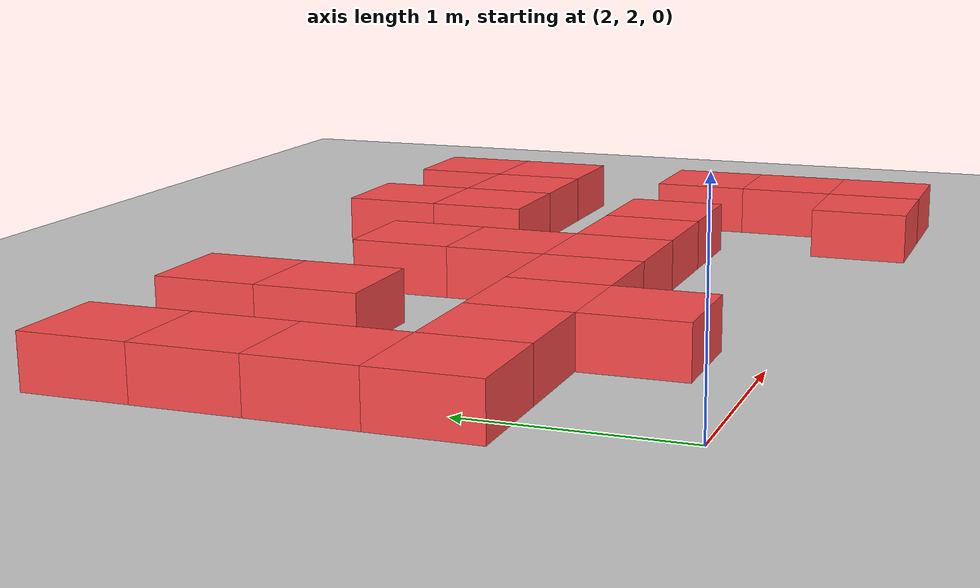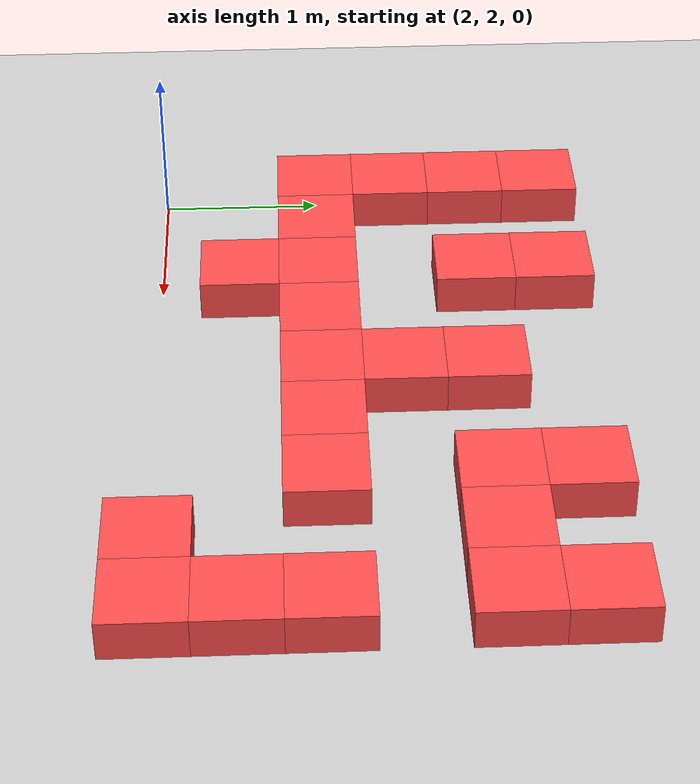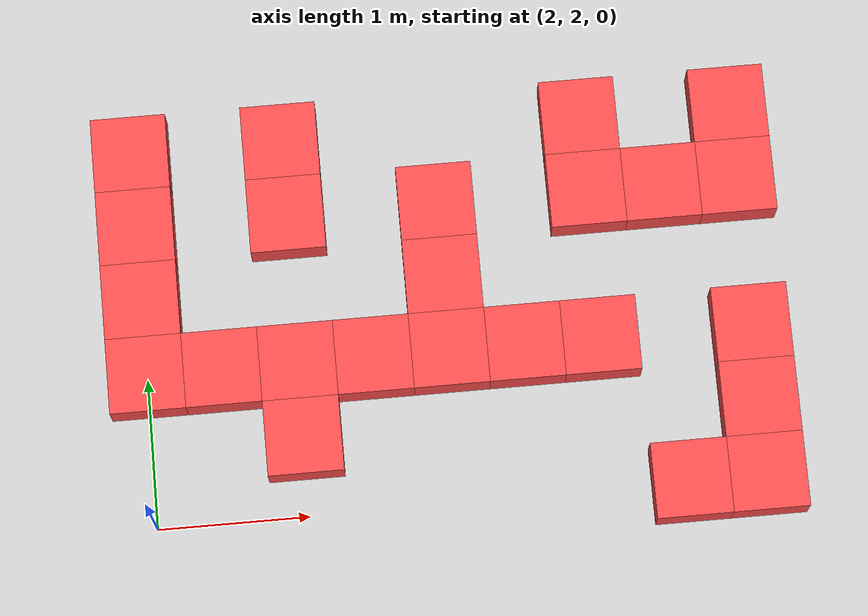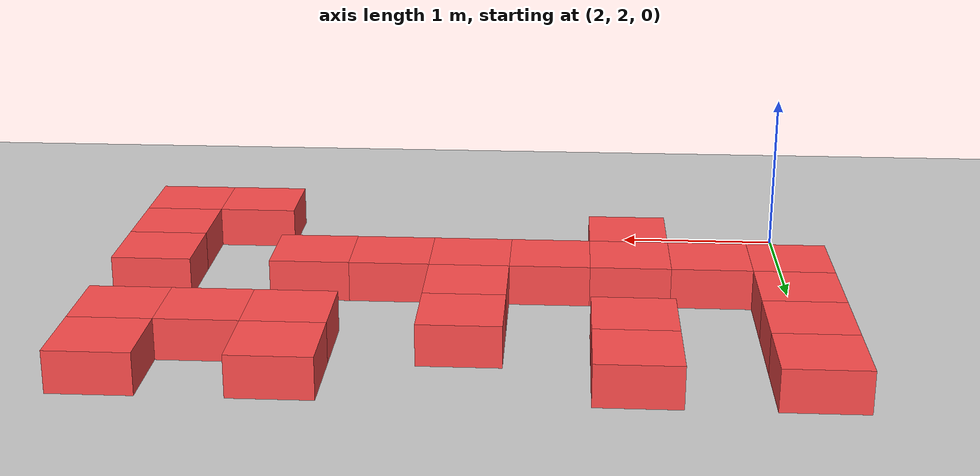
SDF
<sdf version="1.6">
 <world name="default">
  <model name="ground_plane">
   <static>1</static>
   <link name="link">
    <collision name="collision">
     <geometry><plane><normal>0 0 1</normal><size>100 100</size></plane></geometry>
     <surface><friction><ode><mu>100</mu><mu2>50</mu2></ode></friction></surface>
    </collision>
    <visual name="visual">
     <cast_shadows>0</cast_shadows>
     <geometry><plane><normal>0 0 1</normal><size>100 100</size></plane></geometry>
     <material>
      <script><uri>file://media/materials/scripts/gazebo.material</uri><name>Gazebo/Grey</name></script>
     </material>
    </visual>
   </link>
  </model>
  <model name="Box_Red_106">
   <link name="link_0">
    <inertial>
     <mass>1</mass>
     <inertia>
      <ixx>0.166667</ixx>
      <ixy>0</ixy>
      <ixz>0</ixz>
      <iyy>0.166667</iyy>
      <iyz>0</iyz>
      <izz>0.166667</izz>
     </inertia>
    </inertial>
    <visual name="visual">
     <geometry><box><size>0.5 0.5 0.5</size></box></geometry>
     <material>
      <lighting>1</lighting>
      <script><uri>file://media/materials/scripts/gazebo.material</uri><name>Gazebo/Grey</name></script>
      <ambient>1 0.3 0.3 1</ambient>
      <diffuse>0.7 0.7 0.7 1</diffuse>
      <specular>0.01 0.01 0.01 1</specular>
      <emissive>0 0 0 1</emissive>
      <shader type="vertex"><normal_map>__default__</normal_map></shader>
     </material>
    </visual>
    <collision name="collision">
     <geometry><box><size>0.5 0.5 0.5</size></box></geometry>
     <surface>
      <friction>
       <ode><mu>1</mu><mu2>1</mu2><fdir1>0 0 0</fdir1><slip1>0</slip1><slip2>0</slip2></ode>
       <torsional>
        <coefficient>1</coefficient>
        <patch_radius>0</patch_radius>
        <surface_radius>0</surface_radius>
        <use_patch_radius>1</use_patch_radius>
        <ode><slip>0</slip></ode>
       </torsional>
      </friction>
      <bounce><restitution_coefficient>0</restitution_coefficient><threshold>1e+06</threshold></bounce>
      <contact>
       <collide_without_contact>0</collide_without_contact>
       <collide_without_contact_bitmask>1</collide_without_contact_bitmask>
       <collide_bitmask>1</collide_bitmask>
       <ode>
        <soft_cfm>0</soft_cfm>
        <soft_erp>0.2</soft_erp>
        <kp>1e+13</kp>
        <kd>1</kd>
        <max_vel>0.01</max_vel>
        <min_depth>0</min_depth>
       </ode>
       <bullet>
        <split_impulse>1</split_impulse>
        <split_impulse_penetration_threshold>-0.01</split_impulse_penetration_threshold>
        <soft_cfm>0</soft_cfm>
        <soft_erp>0.2</soft_erp>
        <kp>1e+13</kp>
        <kd>1</kd>
       </bullet>
      </contact>
     </surface>
    </collision>
   </link>
   <static>0</static>
   <pose>2.000 3.000 0.000 0 0 0</pose>
  </model>
  <model name="Box_Red_107">
   <link name="link_0">
    <inertial>
     <mass>1</mass>
     <inertia>
      <ixx>0.166667</ixx>
      <ixy>0</ixy>
      <ixz>0</ixz>
      <iyy>0.166667</iyy>
      <iyz>0</iyz>
      <izz>0.166667</izz>
     </inertia>
    </inertial>
    <visual name="visual">
     <geometry><box><size>0.5 0.5 0.5</size></box></geometry>
     <material>
      <lighting>1</lighting>
      <script><uri>file://media/materials/scripts/gazebo.material</uri><name>Gazebo/Grey</name></script>
      <ambient>1 0.3 0.3 1</ambient>
      <diffuse>0.7 0.7 0.7 1</diffuse>
      <specular>0.01 0.01 0.01 1</specular>
      <emissive>0 0 0 1</emissive>
      <shader type="vertex"><normal_map>__default__</normal_map></shader>
     </material>
    </visual>
    <collision name="collision">
     <geometry><box><size>0.5 0.5 0.5</size></box></geometry>
     <surface>
      <friction>
       <ode><mu>1</mu><mu2>1</mu2><fdir1>0 0 0</fdir1><slip1>0</slip1><slip2>0</slip2></ode>
       <torsional>
        <coefficient>1</coefficient>
        <patch_radius>0</patch_radius>
        <surface_radius>0</surface_radius>
        <use_patch_radius>1</use_patch_radius>
        <ode><slip>0</slip></ode>
       </torsional>
      </friction>
      <bounce><restitution_coefficient>0</restitution_coefficient><threshold>1e+06</threshold></bounce>
      <contact>
       <collide_without_contact>0</collide_without_contact>
       <collide_without_contact_bitmask>1</collide_without_contact_bitmask>
       <collide_bitmask>1</collide_bitmask>
       <ode>
        <soft_cfm>0</soft_cfm>
        <soft_erp>0.2</soft_erp>
        <kp>1e+13</kp>
        <kd>1</kd>
        <max_vel>0.01</max_vel>
        <min_depth>0</min_depth>
       </ode>
       <bullet>
        <split_impulse>1</split_impulse>
        <split_impulse_penetration_threshold>-0.01</split_impulse_penetration_threshold>
        <soft_cfm>0</soft_cfm>
        <soft_erp>0.2</soft_erp>
        <kp>1e+13</kp>
        <kd>1</kd>
       </bullet>
      </contact>
     </surface>
    </collision>
   </link>
   <static>0</static>
   <pose>2.000 3.500 0.000 0 0 0</pose>
  </model>
  <model name="Box_Red_108">
   <link name="link_0">
    <inertial>
     <mass>1</mass>
     <inertia>
      <ixx>0.166667</ixx>
      <ixy>0</ixy>
      <ixz>0</ixz>
      <iyy>0.166667</iyy>
      <iyz>0</iyz>
      <izz>0.166667</izz>
     </inertia>
    </inertial>
    <visual name="visual">
     <geometry><box><size>0.5 0.5 0.5</size></box></geometry>
     <material>
      <lighting>1</lighting>
      <script><uri>file://media/materials/scripts/gazebo.material</uri><name>Gazebo/Grey</name></script>
      <ambient>1 0.3 0.3 1</ambient>
      <diffuse>0.7 0.7 0.7 1</diffuse>
      <specular>0.01 0.01 0.01 1</specular>
      <emissive>0 0 0 1</emissive>
      <shader type="vertex"><normal_map>__default__</normal_map></shader>
     </material>
    </visual>
    <collision name="collision">
     <geometry><box><size>0.5 0.5 0.5</size></box></geometry>
     <surface>
      <friction>
       <ode><mu>1</mu><mu2>1</mu2><fdir1>0 0 0</fdir1><slip1>0</slip1><slip2>0</slip2></ode>
       <torsional>
        <coefficient>1</coefficient>
        <patch_radius>0</patch_radius>
        <surface_radius>0</surface_radius>
        <use_patch_radius>1</use_patch_radius>
        <ode><slip>0</slip></ode>
       </torsional>
      </friction>
      <bounce><restitution_coefficient>0</restitution_coefficient><threshold>1e+06</threshold></bounce>
      <contact>
       <collide_without_contact>0</collide_without_contact>
       <collide_without_contact_bitmask>1</collide_without_contact_bitmask>
       <collide_bitmask>1</collide_bitmask>
       <ode>
        <soft_cfm>0</soft_cfm>
        <soft_erp>0.2</soft_erp>
        <kp>1e+13</kp>
        <kd>1</kd>
        <max_vel>0.01</max_vel>
        <min_depth>0</min_depth>
       </ode>
       <bullet>
        <split_impulse>1</split_impulse>
        <split_impulse_penetration_threshold>-0.01</split_impulse_penetration_threshold>
        <soft_cfm>0</soft_cfm>
        <soft_erp>0.2</soft_erp>
        <kp>1e+13</kp>
        <kd>1</kd>
       </bullet>
      </contact>
     </surface>
    </collision>
   </link>
   <static>0</static>
   <pose>2.000 4.000 0.000 0 0 0</pose>
  </model>
  <model name="Box_Red_109">
   <link name="link_0">
    <inertial>
     <mass>1</mass>
     <inertia>
      <ixx>0.166667</ixx>
      <ixy>0</ixy>
      <ixz>0</ixz>
      <iyy>0.166667</iyy>
      <iyz>0</iyz>
      <izz>0.166667</izz>
     </inertia>
    </inertial>
    <visual name="visual">
     <geometry><box><size>0.5 0.5 0.5</size></box></geometry>
     <material>
      <lighting>1</lighting>
      <script><uri>file://media/materials/scripts/gazebo.material</uri><name>Gazebo/Grey</name></script>
      <ambient>1 0.3 0.3 1</ambient>
      <diffuse>0.7 0.7 0.7 1</diffuse>
      <specular>0.01 0.01 0.01 1</specular>
      <emissive>0 0 0 1</emissive>
      <shader type="vertex"><normal_map>__default__</normal_map></shader>
     </material>
    </visual>
    <collision name="collision">
     <geometry><box><size>0.5 0.5 0.5</size></box></geometry>
     <surface>
      <friction>
       <ode><mu>1</mu><mu2>1</mu2><fdir1>0 0 0</fdir1><slip1>0</slip1><slip2>0</slip2></ode>
       <torsional>
        <coefficient>1</coefficient>
        <patch_radius>0</patch_radius>
        <surface_radius>0</surface_radius>
        <use_patch_radius>1</use_patch_radius>
        <ode><slip>0</slip></ode>
       </torsional>
      </friction>
      <bounce><restitution_coefficient>0</restitution_coefficient><threshold>1e+06</threshold></bounce>
      <contact>
       <collide_without_contact>0</collide_without_contact>
       <collide_without_contact_bitmask>1</collide_without_contact_bitmask>
       <collide_bitmask>1</collide_bitmask>
       <ode>
        <soft_cfm>0</soft_cfm>
        <soft_erp>0.2</soft_erp>
        <kp>1e+13</kp>
        <kd>1</kd>
        <max_vel>0.01</max_vel>
        <min_depth>0</min_depth>
       </ode>
       <bullet>
        <split_impulse>1</split_impulse>
        <split_impulse_penetration_threshold>-0.01</split_impulse_penetration_threshold>
        <soft_cfm>0</soft_cfm>
        <soft_erp>0.2</soft_erp>
        <kp>1e+13</kp>
        <kd>1</kd>
       </bullet>
      </contact>
     </surface>
    </collision>
   </link>
   <static>0</static>
   <pose>2.000 4.500 0.000 0 0 0</pose>
  </model>
  <model name="Box_Red_131">
   <link name="link_0">
    <inertial>
     <mass>1</mass>
     <inertia>
      <ixx>0.166667</ixx>
      <ixy>0</ixy>
      <ixz>0</ixz>
      <iyy>0.166667</iyy>
      <iyz>0</iyz>
      <izz>0.166667</izz>
     </inertia>
    </inertial>
    <visual name="visual">
     <geometry><box><size>0.5 0.5 0.5</size></box></geometry>
     <material>
      <lighting>1</lighting>
      <script><uri>file://media/materials/scripts/gazebo.material</uri><name>Gazebo/Grey</name></script>
      <ambient>1 0.3 0.3 1</ambient>
      <diffuse>0.7 0.7 0.7 1</diffuse>
      <specular>0.01 0.01 0.01 1</specular>
      <emissive>0 0 0 1</emissive>
      <shader type="vertex"><normal_map>__default__</normal_map></shader>
     </material>
    </visual>
    <collision name="collision">
     <geometry><box><size>0.5 0.5 0.5</size></box></geometry>
     <surface>
      <friction>
       <ode><mu>1</mu><mu2>1</mu2><fdir1>0 0 0</fdir1><slip1>0</slip1><slip2>0</slip2></ode>
       <torsional>
        <coefficient>1</coefficient>
        <patch_radius>0</patch_radius>
        <surface_radius>0</surface_radius>
        <use_patch_radius>1</use_patch_radius>
        <ode><slip>0</slip></ode>
       </torsional>
      </friction>
      <bounce><restitution_coefficient>0</restitution_coefficient><threshold>1e+06</threshold></bounce>
      <contact>
       <collide_without_contact>0</collide_without_contact>
       <collide_without_contact_bitmask>1</collide_without_contact_bitmask>
       <collide_bitmask>1</collide_bitmask>
       <ode>
        <soft_cfm>0</soft_cfm>
        <soft_erp>0.2</soft_erp>
        <kp>1e+13</kp>
        <kd>1</kd>
        <max_vel>0.01</max_vel>
        <min_depth>0</min_depth>
       </ode>
       <bullet>
        <split_impulse>1</split_impulse>
        <split_impulse_penetration_threshold>-0.01</split_impulse_penetration_threshold>
        <soft_cfm>0</soft_cfm>
        <soft_erp>0.2</soft_erp>
        <kp>1e+13</kp>
        <kd>1</kd>
       </bullet>
      </contact>
     </surface>
    </collision>
   </link>
   <static>0</static>
   <pose>2.500 3.000 0.000 0 0 0</pose>
  </model>
  <model name="Box_Red_155">
   <link name="link_0">
    <inertial>
     <mass>1</mass>
     <inertia>
      <ixx>0.166667</ixx>
      <ixy>0</ixy>
      <ixz>0</ixz>
      <iyy>0.166667</iyy>
      <iyz>0</iyz>
      <izz>0.166667</izz>
     </inertia>
    </inertial>
    <visual name="visual">
     <geometry><box><size>0.5 0.5 0.5</size></box></geometry>
     <material>
      <lighting>1</lighting>
      <script><uri>file://media/materials/scripts/gazebo.material</uri><name>Gazebo/Grey</name></script>
      <ambient>1 0.3 0.3 1</ambient>
      <diffuse>0.7 0.7 0.7 1</diffuse>
      <specular>0.01 0.01 0.01 1</specular>
      <emissive>0 0 0 1</emissive>
      <shader type="vertex"><normal_map>__default__</normal_map></shader>
     </material>
    </visual>
    <collision name="collision">
     <geometry><box><size>0.5 0.5 0.5</size></box></geometry>
     <surface>
      <friction>
       <ode><mu>1</mu><mu2>1</mu2><fdir1>0 0 0</fdir1><slip1>0</slip1><slip2>0</slip2></ode>
       <torsional>
        <coefficient>1</coefficient>
        <patch_radius>0</patch_radius>
        <surface_radius>0</surface_radius>
        <use_patch_radius>1</use_patch_radius>
        <ode><slip>0</slip></ode>
       </torsional>
      </friction>
      <bounce><restitution_coefficient>0</restitution_coefficient><threshold>1e+06</threshold></bounce>
      <contact>
       <collide_without_contact>0</collide_without_contact>
       <collide_without_contact_bitmask>1</collide_without_contact_bitmask>
       <collide_bitmask>1</collide_bitmask>
       <ode>
        <soft_cfm>0</soft_cfm>
        <soft_erp>0.2</soft_erp>
        <kp>1e+13</kp>
        <kd>1</kd>
        <max_vel>0.01</max_vel>
        <min_depth>0</min_depth>
       </ode>
       <bullet>
        <split_impulse>1</split_impulse>
        <split_impulse_penetration_threshold>-0.01</split_impulse_penetration_threshold>
        <soft_cfm>0</soft_cfm>
        <soft_erp>0.2</soft_erp>
        <kp>1e+13</kp>
        <kd>1</kd>
       </bullet>
      </contact>
     </surface>
    </collision>
   </link>
   <static>0</static>
   <pose>3.000 2.500 0.000 0 0 0</pose>
  </model>
  <model name="Box_Red_156">
   <link name="link_0">
    <inertial>
     <mass>1</mass>
     <inertia>
      <ixx>0.166667</ixx>
      <ixy>0</ixy>
      <ixz>0</ixz>
      <iyy>0.166667</iyy>
      <iyz>0</iyz>
      <izz>0.166667</izz>
     </inertia>
    </inertial>
    <visual name="visual">
     <geometry><box><size>0.5 0.5 0.5</size></box></geometry>
     <material>
      <lighting>1</lighting>
      <script><uri>file://media/materials/scripts/gazebo.material</uri><name>Gazebo/Grey</name></script>
      <ambient>1 0.3 0.3 1</ambient>
      <diffuse>0.7 0.7 0.7 1</diffuse>
      <specular>0.01 0.01 0.01 1</specular>
      <emissive>0 0 0 1</emissive>
      <shader type="vertex"><normal_map>__default__</normal_map></shader>
     </material>
    </visual>
    <collision name="collision">
     <geometry><box><size>0.5 0.5 0.5</size></box></geometry>
     <surface>
      <friction>
       <ode><mu>1</mu><mu2>1</mu2><fdir1>0 0 0</fdir1><slip1>0</slip1><slip2>0</slip2></ode>
       <torsional>
        <coefficient>1</coefficient>
        <patch_radius>0</patch_radius>
        <surface_radius>0</surface_radius>
        <use_patch_radius>1</use_patch_radius>
        <ode><slip>0</slip></ode>
       </torsional>
      </friction>
      <bounce><restitution_coefficient>0</restitution_coefficient><threshold>1e+06</threshold></bounce>
      <contact>
       <collide_without_contact>0</collide_without_contact>
       <collide_without_contact_bitmask>1</collide_without_contact_bitmask>
       <collide_bitmask>1</collide_bitmask>
       <ode>
        <soft_cfm>0</soft_cfm>
        <soft_erp>0.2</soft_erp>
        <kp>1e+13</kp>
        <kd>1</kd>
        <max_vel>0.01</max_vel>
        <min_depth>0</min_depth>
       </ode>
       <bullet>
        <split_impulse>1</split_impulse>
        <split_impulse_penetration_threshold>-0.01</split_impulse_penetration_threshold>
        <soft_cfm>0</soft_cfm>
        <soft_erp>0.2</soft_erp>
        <kp>1e+13</kp>
        <kd>1</kd>
       </bullet>
      </contact>
     </surface>
    </collision>
   </link>
   <static>0</static>
   <pose>3.000 3.000 0.000 0 0 0</pose>
  </model>
  <model name="Box_Red_158">
   <link name="link_0">
    <inertial>
     <mass>1</mass>
     <inertia>
      <ixx>0.166667</ixx>
      <ixy>0</ixy>
      <ixz>0</ixz>
      <iyy>0.166667</iyy>
      <iyz>0</iyz>
      <izz>0.166667</izz>
     </inertia>
    </inertial>
    <visual name="visual">
     <geometry><box><size>0.5 0.5 0.5</size></box></geometry>
     <material>
      <lighting>1</lighting>
      <script><uri>file://media/materials/scripts/gazebo.material</uri><name>Gazebo/Grey</name></script>
      <ambient>1 0.3 0.3 1</ambient>
      <diffuse>0.7 0.7 0.7 1</diffuse>
      <specular>0.01 0.01 0.01 1</specular>
      <emissive>0 0 0 1</emissive>
      <shader type="vertex"><normal_map>__default__</normal_map></shader>
     </material>
    </visual>
    <collision name="collision">
     <geometry><box><size>0.5 0.5 0.5</size></box></geometry>
     <surface>
      <friction>
       <ode><mu>1</mu><mu2>1</mu2><fdir1>0 0 0</fdir1><slip1>0</slip1><slip2>0</slip2></ode>
       <torsional>
        <coefficient>1</coefficient>
        <patch_radius>0</patch_radius>
        <surface_radius>0</surface_radius>
        <use_patch_radius>1</use_patch_radius>
        <ode><slip>0</slip></ode>
       </torsional>
      </friction>
      <bounce><restitution_coefficient>0</restitution_coefficient><threshold>1e+06</threshold></bounce>
      <contact>
       <collide_without_contact>0</collide_without_contact>
       <collide_without_contact_bitmask>1</collide_without_contact_bitmask>
       <collide_bitmask>1</collide_bitmask>
       <ode>
        <soft_cfm>0</soft_cfm>
        <soft_erp>0.2</soft_erp>
        <kp>1e+13</kp>
        <kd>1</kd>
        <max_vel>0.01</max_vel>
        <min_depth>0</min_depth>
       </ode>
       <bullet>
        <split_impulse>1</split_impulse>
        <split_impulse_penetration_threshold>-0.01</split_impulse_penetration_threshold>
        <soft_cfm>0</soft_cfm>
        <soft_erp>0.2</soft_erp>
        <kp>1e+13</kp>
        <kd>1</kd>
       </bullet>
      </contact>
     </surface>
    </collision>
   </link>
   <static>0</static>
   <pose>3.000 4.000 0.000 0 0 0</pose>
  </model>
  <model name="Box_Red_159">
   <link name="link_0">
    <inertial>
     <mass>1</mass>
     <inertia>
      <ixx>0.166667</ixx>
      <ixy>0</ixy>
      <ixz>0</ixz>
      <iyy>0.166667</iyy>
      <iyz>0</iyz>
      <izz>0.166667</izz>
     </inertia>
    </inertial>
    <visual name="visual">
     <geometry><box><size>0.5 0.5 0.5</size></box></geometry>
     <material>
      <lighting>1</lighting>
      <script><uri>file://media/materials/scripts/gazebo.material</uri><name>Gazebo/Grey</name></script>
      <ambient>1 0.3 0.3 1</ambient>
      <diffuse>0.7 0.7 0.7 1</diffuse>
      <specular>0.01 0.01 0.01 1</specular>
      <emissive>0 0 0 1</emissive>
      <shader type="vertex"><normal_map>__default__</normal_map></shader>
     </material>
    </visual>
    <collision name="collision">
     <geometry><box><size>0.5 0.5 0.5</size></box></geometry>
     <surface>
      <friction>
       <ode><mu>1</mu><mu2>1</mu2><fdir1>0 0 0</fdir1><slip1>0</slip1><slip2>0</slip2></ode>
       <torsional>
        <coefficient>1</coefficient>
        <patch_radius>0</patch_radius>
        <surface_radius>0</surface_radius>
        <use_patch_radius>1</use_patch_radius>
        <ode><slip>0</slip></ode>
       </torsional>
      </friction>
      <bounce><restitution_coefficient>0</restitution_coefficient><threshold>1e+06</threshold></bounce>
      <contact>
       <collide_without_contact>0</collide_without_contact>
       <collide_without_contact_bitmask>1</collide_without_contact_bitmask>
       <collide_bitmask>1</collide_bitmask>
       <ode>
        <soft_cfm>0</soft_cfm>
        <soft_erp>0.2</soft_erp>
        <kp>1e+13</kp>
        <kd>1</kd>
        <max_vel>0.01</max_vel>
        <min_depth>0</min_depth>
       </ode>
       <bullet>
        <split_impulse>1</split_impulse>
        <split_impulse_penetration_threshold>-0.01</split_impulse_penetration_threshold>
        <soft_cfm>0</soft_cfm>
        <soft_erp>0.2</soft_erp>
        <kp>1e+13</kp>
        <kd>1</kd>
       </bullet>
      </contact>
     </surface>
    </collision>
   </link>
   <static>0</static>
   <pose>3.000 4.500 0.000 0 0 0</pose>
  </model>
  <model name="Box_Red_181">
   <link name="link_0">
    <inertial>
     <mass>1</mass>
     <inertia>
      <ixx>0.166667</ixx>
      <ixy>0</ixy>
      <ixz>0</ixz>
      <iyy>0.166667</iyy>
      <iyz>0</iyz>
      <izz>0.166667</izz>
     </inertia>
    </inertial>
    <visual name="visual">
     <geometry><box><size>0.5 0.5 0.5</size></box></geometry>
     <material>
      <lighting>1</lighting>
      <script><uri>file://media/materials/scripts/gazebo.material</uri><name>Gazebo/Grey</name></script>
      <ambient>1 0.3 0.3 1</ambient>
      <diffuse>0.7 0.7 0.7 1</diffuse>
      <specular>0.01 0.01 0.01 1</specular>
      <emissive>0 0 0 1</emissive>
      <shader type="vertex"><normal_map>__default__</normal_map></shader>
     </material>
    </visual>
    <collision name="collision">
     <geometry><box><size>0.5 0.5 0.5</size></box></geometry>
     <surface>
      <friction>
       <ode><mu>1</mu><mu2>1</mu2><fdir1>0 0 0</fdir1><slip1>0</slip1><slip2>0</slip2></ode>
       <torsional>
        <coefficient>1</coefficient>
        <patch_radius>0</patch_radius>
        <surface_radius>0</surface_radius>
        <use_patch_radius>1</use_patch_radius>
        <ode><slip>0</slip></ode>
       </torsional>
      </friction>
      <bounce><restitution_coefficient>0</restitution_coefficient><threshold>1e+06</threshold></bounce>
      <contact>
       <collide_without_contact>0</collide_without_contact>
       <collide_without_contact_bitmask>1</collide_without_contact_bitmask>
       <collide_bitmask>1</collide_bitmask>
       <ode>
        <soft_cfm>0</soft_cfm>
        <soft_erp>0.2</soft_erp>
        <kp>1e+13</kp>
        <kd>1</kd>
        <max_vel>0.01</max_vel>
        <min_depth>0</min_depth>
       </ode>
       <bullet>
        <split_impulse>1</split_impulse>
        <split_impulse_penetration_threshold>-0.01</split_impulse_penetration_threshold>
        <soft_cfm>0</soft_cfm>
        <soft_erp>0.2</soft_erp>
        <kp>1e+13</kp>
        <kd>1</kd>
       </bullet>
      </contact>
     </surface>
    </collision>
   </link>
   <static>0</static>
   <pose>3.500 3.000 0.000 0 0 0</pose>
  </model>
  <model name="Box_Red_206">
   <link name="link_0">
    <inertial>
     <mass>1</mass>
     <inertia>
      <ixx>0.166667</ixx>
      <ixy>0</ixy>
      <ixz>0</ixz>
      <iyy>0.166667</iyy>
      <iyz>0</iyz>
      <izz>0.166667</izz>
     </inertia>
    </inertial>
    <visual name="visual">
     <geometry><box><size>0.5 0.5 0.5</size></box></geometry>
     <material>
      <lighting>1</lighting>
      <script><uri>file://media/materials/scripts/gazebo.material</uri><name>Gazebo/Grey</name></script>
      <ambient>1 0.3 0.3 1</ambient>
      <diffuse>0.7 0.7 0.7 1</diffuse>
      <specular>0.01 0.01 0.01 1</specular>
      <emissive>0 0 0 1</emissive>
      <shader type="vertex"><normal_map>__default__</normal_map></shader>
     </material>
    </visual>
    <collision name="collision">
     <geometry><box><size>0.5 0.5 0.5</size></box></geometry>
     <surface>
      <friction>
       <ode><mu>1</mu><mu2>1</mu2><fdir1>0 0 0</fdir1><slip1>0</slip1><slip2>0</slip2></ode>
       <torsional>
        <coefficient>1</coefficient>
        <patch_radius>0</patch_radius>
        <surface_radius>0</surface_radius>
        <use_patch_radius>1</use_patch_radius>
        <ode><slip>0</slip></ode>
       </torsional>
      </friction>
      <bounce><restitution_coefficient>0</restitution_coefficient><threshold>1e+06</threshold></bounce>
      <contact>
       <collide_without_contact>0</collide_without_contact>
       <collide_without_contact_bitmask>1</collide_without_contact_bitmask>
       <collide_bitmask>1</collide_bitmask>
       <ode>
        <soft_cfm>0</soft_cfm>
        <soft_erp>0.2</soft_erp>
        <kp>1e+13</kp>
        <kd>1</kd>
        <max_vel>0.01</max_vel>
        <min_depth>0</min_depth>
       </ode>
       <bullet>
        <split_impulse>1</split_impulse>
        <split_impulse_penetration_threshold>-0.01</split_impulse_penetration_threshold>
        <soft_cfm>0</soft_cfm>
        <soft_erp>0.2</soft_erp>
        <kp>1e+13</kp>
        <kd>1</kd>
       </bullet>
      </contact>
     </surface>
    </collision>
   </link>
   <static>0</static>
   <pose>4.000 3.000 0.000 0 0 0</pose>
  </model>
  <model name="Box_Red_207">
   <link name="link_0">
    <inertial>
     <mass>1</mass>
     <inertia>
      <ixx>0.166667</ixx>
      <ixy>0</ixy>
      <ixz>0</ixz>
      <iyy>0.166667</iyy>
      <iyz>0</iyz>
      <izz>0.166667</izz>
     </inertia>
    </inertial>
    <visual name="visual">
     <geometry><box><size>0.5 0.5 0.5</size></box></geometry>
     <material>
      <lighting>1</lighting>
      <script><uri>file://media/materials/scripts/gazebo.material</uri><name>Gazebo/Grey</name></script>
      <ambient>1 0.3 0.3 1</ambient>
      <diffuse>0.7 0.7 0.7 1</diffuse>
      <specular>0.01 0.01 0.01 1</specular>
      <emissive>0 0 0 1</emissive>
      <shader type="vertex"><normal_map>__default__</normal_map></shader>
     </material>
    </visual>
    <collision name="collision">
     <geometry><box><size>0.5 0.5 0.5</size></box></geometry>
     <surface>
      <friction>
       <ode><mu>1</mu><mu2>1</mu2><fdir1>0 0 0</fdir1><slip1>0</slip1><slip2>0</slip2></ode>
       <torsional>
        <coefficient>1</coefficient>
        <patch_radius>0</patch_radius>
        <surface_radius>0</surface_radius>
        <use_patch_radius>1</use_patch_radius>
        <ode><slip>0</slip></ode>
       </torsional>
      </friction>
      <bounce><restitution_coefficient>0</restitution_coefficient><threshold>1e+06</threshold></bounce>
      <contact>
       <collide_without_contact>0</collide_without_contact>
       <collide_without_contact_bitmask>1</collide_without_contact_bitmask>
       <collide_bitmask>1</collide_bitmask>
       <ode>
        <soft_cfm>0</soft_cfm>
        <soft_erp>0.2</soft_erp>
        <kp>1e+13</kp>
        <kd>1</kd>
        <max_vel>0.01</max_vel>
        <min_depth>0</min_depth>
       </ode>
       <bullet>
        <split_impulse>1</split_impulse>
        <split_impulse_penetration_threshold>-0.01</split_impulse_penetration_threshold>
        <soft_cfm>0</soft_cfm>
        <soft_erp>0.2</soft_erp>
        <kp>1e+13</kp>
        <kd>1</kd>
       </bullet>
      </contact>
     </surface>
    </collision>
   </link>
   <static>0</static>
   <pose>4.000 3.500 0.000 0 0 0</pose>
  </model>
  <model name="Box_Red_208">
   <link name="link_0">
    <inertial>
     <mass>1</mass>
     <inertia>
      <ixx>0.166667</ixx>
      <ixy>0</ixy>
      <ixz>0</ixz>
      <iyy>0.166667</iyy>
      <iyz>0</iyz>
      <izz>0.166667</izz>
     </inertia>
    </inertial>
    <visual name="visual">
     <geometry><box><size>0.5 0.5 0.5</size></box></geometry>
     <material>
      <lighting>1</lighting>
      <script><uri>file://media/materials/scripts/gazebo.material</uri><name>Gazebo/Grey</name></script>
      <ambient>1 0.3 0.3 1</ambient>
      <diffuse>0.7 0.7 0.7 1</diffuse>
      <specular>0.01 0.01 0.01 1</specular>
      <emissive>0 0 0 1</emissive>
      <shader type="vertex"><normal_map>__default__</normal_map></shader>
     </material>
    </visual>
    <collision name="collision">
     <geometry><box><size>0.5 0.5 0.5</size></box></geometry>
     <surface>
      <friction>
       <ode><mu>1</mu><mu2>1</mu2><fdir1>0 0 0</fdir1><slip1>0</slip1><slip2>0</slip2></ode>
       <torsional>
        <coefficient>1</coefficient>
        <patch_radius>0</patch_radius>
        <surface_radius>0</surface_radius>
        <use_patch_radius>1</use_patch_radius>
        <ode><slip>0</slip></ode>
       </torsional>
      </friction>
      <bounce><restitution_coefficient>0</restitution_coefficient><threshold>1e+06</threshold></bounce>
      <contact>
       <collide_without_contact>0</collide_without_contact>
       <collide_without_contact_bitmask>1</collide_without_contact_bitmask>
       <collide_bitmask>1</collide_bitmask>
       <ode>
        <soft_cfm>0</soft_cfm>
        <soft_erp>0.2</soft_erp>
        <kp>1e+13</kp>
        <kd>1</kd>
        <max_vel>0.01</max_vel>
        <min_depth>0</min_depth>
       </ode>
       <bullet>
        <split_impulse>1</split_impulse>
        <split_impulse_penetration_threshold>-0.01</split_impulse_penetration_threshold>
        <soft_cfm>0</soft_cfm>
        <soft_erp>0.2</soft_erp>
        <kp>1e+13</kp>
        <kd>1</kd>
       </bullet>
      </contact>
     </surface>
    </collision>
   </link>
   <static>0</static>
   <pose>4.000 4.000 0.000 0 0 0</pose>
  </model>
  <model name="Box_Red_231">
   <link name="link_0">
    <inertial>
     <mass>1</mass>
     <inertia>
      <ixx>0.166667</ixx>
      <ixy>0</ixy>
      <ixz>0</ixz>
      <iyy>0.166667</iyy>
      <iyz>0</iyz>
      <izz>0.166667</izz>
     </inertia>
    </inertial>
    <visual name="visual">
     <geometry><box><size>0.5 0.5 0.5</size></box></geometry>
     <material>
      <lighting>1</lighting>
      <script><uri>file://media/materials/scripts/gazebo.material</uri><name>Gazebo/Grey</name></script>
      <ambient>1 0.3 0.3 1</ambient>
      <diffuse>0.7 0.7 0.7 1</diffuse>
      <specular>0.01 0.01 0.01 1</specular>
      <emissive>0 0 0 1</emissive>
      <shader type="vertex"><normal_map>__default__</normal_map></shader>
     </material>
    </visual>
    <collision name="collision">
     <geometry><box><size>0.5 0.5 0.5</size></box></geometry>
     <surface>
      <friction>
       <ode><mu>1</mu><mu2>1</mu2><fdir1>0 0 0</fdir1><slip1>0</slip1><slip2>0</slip2></ode>
       <torsional>
        <coefficient>1</coefficient>
        <patch_radius>0</patch_radius>
        <surface_radius>0</surface_radius>
        <use_patch_radius>1</use_patch_radius>
        <ode><slip>0</slip></ode>
       </torsional>
      </friction>
      <bounce><restitution_coefficient>0</restitution_coefficient><threshold>1e+06</threshold></bounce>
      <contact>
       <collide_without_contact>0</collide_without_contact>
       <collide_without_contact_bitmask>1</collide_without_contact_bitmask>
       <collide_bitmask>1</collide_bitmask>
       <ode>
        <soft_cfm>0</soft_cfm>
        <soft_erp>0.2</soft_erp>
        <kp>1e+13</kp>
        <kd>1</kd>
        <max_vel>0.01</max_vel>
        <min_depth>0</min_depth>
       </ode>
       <bullet>
        <split_impulse>1</split_impulse>
        <split_impulse_penetration_threshold>-0.01</split_impulse_penetration_threshold>
        <soft_cfm>0</soft_cfm>
        <soft_erp>0.2</soft_erp>
        <kp>1e+13</kp>
        <kd>1</kd>
       </bullet>
      </contact>
     </surface>
    </collision>
   </link>
   <static>0</static>
   <pose>4.500 3.000 0.000 0 0 0</pose>
  </model>
  <model name="Box_Red_256">
   <link name="link_0">
    <inertial>
     <mass>1</mass>
     <inertia>
      <ixx>0.166667</ixx>
      <ixy>0</ixy>
      <ixz>0</ixz>
      <iyy>0.166667</iyy>
      <iyz>0</iyz>
      <izz>0.166667</izz>
     </inertia>
    </inertial>
    <visual name="visual">
     <geometry><box><size>0.5 0.5 0.5</size></box></geometry>
     <material>
      <lighting>1</lighting>
      <script><uri>file://media/materials/scripts/gazebo.material</uri><name>Gazebo/Grey</name></script>
      <ambient>1 0.3 0.3 1</ambient>
      <diffuse>0.7 0.7 0.7 1</diffuse>
      <specular>0.01 0.01 0.01 1</specular>
      <emissive>0 0 0 1</emissive>
      <shader type="vertex"><normal_map>__default__</normal_map></shader>
     </material>
    </visual>
    <collision name="collision">
     <geometry><box><size>0.5 0.5 0.5</size></box></geometry>
     <surface>
      <friction>
       <ode><mu>1</mu><mu2>1</mu2><fdir1>0 0 0</fdir1><slip1>0</slip1><slip2>0</slip2></ode>
       <torsional>
        <coefficient>1</coefficient>
        <patch_radius>0</patch_radius>
        <surface_radius>0</surface_radius>
        <use_patch_radius>1</use_patch_radius>
        <ode><slip>0</slip></ode>
       </torsional>
      </friction>
      <bounce><restitution_coefficient>0</restitution_coefficient><threshold>1e+06</threshold></bounce>
      <contact>
       <collide_without_contact>0</collide_without_contact>
       <collide_without_contact_bitmask>1</collide_without_contact_bitmask>
       <collide_bitmask>1</collide_bitmask>
       <ode>
        <soft_cfm>0</soft_cfm>
        <soft_erp>0.2</soft_erp>
        <kp>1e+13</kp>
        <kd>1</kd>
        <max_vel>0.01</max_vel>
        <min_depth>0</min_depth>
       </ode>
       <bullet>
        <split_impulse>1</split_impulse>
        <split_impulse_penetration_threshold>-0.01</split_impulse_penetration_threshold>
        <soft_cfm>0</soft_cfm>
        <soft_erp>0.2</soft_erp>
        <kp>1e+13</kp>
        <kd>1</kd>
       </bullet>
      </contact>
     </surface>
    </collision>
   </link>
   <static>0</static>
   <pose>5.000 3.000 0.000 0 0 0</pose>
  </model>
  <model name="Box_Red_258">
   <link name="link_0">
    <inertial>
     <mass>1</mass>
     <inertia>
      <ixx>0.166667</ixx>
      <ixy>0</ixy>
      <ixz>0</ixz>
      <iyy>0.166667</iyy>
      <iyz>0</iyz>
      <izz>0.166667</izz>
     </inertia>
    </inertial>
    <visual name="visual">
     <geometry><box><size>0.5 0.5 0.5</size></box></geometry>
     <material>
      <lighting>1</lighting>
      <script><uri>file://media/materials/scripts/gazebo.material</uri><name>Gazebo/Grey</name></script>
      <ambient>1 0.3 0.3 1</ambient>
      <diffuse>0.7 0.7 0.7 1</diffuse>
      <specular>0.01 0.01 0.01 1</specular>
      <emissive>0 0 0 1</emissive>
      <shader type="vertex"><normal_map>__default__</normal_map></shader>
     </material>
    </visual>
    <collision name="collision">
     <geometry><box><size>0.5 0.5 0.5</size></box></geometry>
     <surface>
      <friction>
       <ode><mu>1</mu><mu2>1</mu2><fdir1>0 0 0</fdir1><slip1>0</slip1><slip2>0</slip2></ode>
       <torsional>
        <coefficient>1</coefficient>
        <patch_radius>0</patch_radius>
        <surface_radius>0</surface_radius>
        <use_patch_radius>1</use_patch_radius>
        <ode><slip>0</slip></ode>
       </torsional>
      </friction>
      <bounce><restitution_coefficient>0</restitution_coefficient><threshold>1e+06</threshold></bounce>
      <contact>
       <collide_without_contact>0</collide_without_contact>
       <collide_without_contact_bitmask>1</collide_without_contact_bitmask>
       <collide_bitmask>1</collide_bitmask>
       <ode>
        <soft_cfm>0</soft_cfm>
        <soft_erp>0.2</soft_erp>
        <kp>1e+13</kp>
        <kd>1</kd>
        <max_vel>0.01</max_vel>
        <min_depth>0</min_depth>
       </ode>
       <bullet>
        <split_impulse>1</split_impulse>
        <split_impulse_penetration_threshold>-0.01</split_impulse_penetration_threshold>
        <soft_cfm>0</soft_cfm>
        <soft_erp>0.2</soft_erp>
        <kp>1e+13</kp>
        <kd>1</kd>
       </bullet>
      </contact>
     </surface>
    </collision>
   </link>
   <static>0</static>
   <pose>5.000 4.000 0.000 0 0 0</pose>
  </model>
  <model name="Box_Red_259">
   <link name="link_0">
    <inertial>
     <mass>1</mass>
     <inertia>
      <ixx>0.166667</ixx>
      <ixy>0</ixy>
      <ixz>0</ixz>
      <iyy>0.166667</iyy>
      <iyz>0</iyz>
      <izz>0.166667</izz>
     </inertia>
    </inertial>
    <visual name="visual">
     <geometry><box><size>0.5 0.5 0.5</size></box></geometry>
     <material>
      <lighting>1</lighting>
      <script><uri>file://media/materials/scripts/gazebo.material</uri><name>Gazebo/Grey</name></script>
      <ambient>1 0.3 0.3 1</ambient>
      <diffuse>0.7 0.7 0.7 1</diffuse>
      <specular>0.01 0.01 0.01 1</specular>
      <emissive>0 0 0 1</emissive>
      <shader type="vertex"><normal_map>__default__</normal_map></shader>
     </material>
    </visual>
    <collision name="collision">
     <geometry><box><size>0.5 0.5 0.5</size></box></geometry>
     <surface>
      <friction>
       <ode><mu>1</mu><mu2>1</mu2><fdir1>0 0 0</fdir1><slip1>0</slip1><slip2>0</slip2></ode>
       <torsional>
        <coefficient>1</coefficient>
        <patch_radius>0</patch_radius>
        <surface_radius>0</surface_radius>
        <use_patch_radius>1</use_patch_radius>
        <ode><slip>0</slip></ode>
       </torsional>
      </friction>
      <bounce><restitution_coefficient>0</restitution_coefficient><threshold>1e+06</threshold></bounce>
      <contact>
       <collide_without_contact>0</collide_without_contact>
       <collide_without_contact_bitmask>1</collide_without_contact_bitmask>
       <collide_bitmask>1</collide_bitmask>
       <ode>
        <soft_cfm>0</soft_cfm>
        <soft_erp>0.2</soft_erp>
        <kp>1e+13</kp>
        <kd>1</kd>
        <max_vel>0.01</max_vel>
        <min_depth>0</min_depth>
       </ode>
       <bullet>
        <split_impulse>1</split_impulse>
        <split_impulse_penetration_threshold>-0.01</split_impulse_penetration_threshold>
        <soft_cfm>0</soft_cfm>
        <soft_erp>0.2</soft_erp>
        <kp>1e+13</kp>
        <kd>1</kd>
       </bullet>
      </contact>
     </surface>
    </collision>
   </link>
   <static>0</static>
   <pose>5.000 4.500 0.000 0 0 0</pose>
  </model>
  <model name="Box_Red_279">
   <link name="link_0">
    <inertial>
     <mass>1</mass>
     <inertia>
      <ixx>0.166667</ixx>
      <ixy>0</ixy>
      <ixz>0</ixz>
      <iyy>0.166667</iyy>
      <iyz>0</iyz>
      <izz>0.166667</izz>
     </inertia>
    </inertial>
    <visual name="visual">
     <geometry><box><size>0.5 0.5 0.5</size></box></geometry>
     <material>
      <lighting>1</lighting>
      <script><uri>file://media/materials/scripts/gazebo.material</uri><name>Gazebo/Grey</name></script>
      <ambient>1 0.3 0.3 1</ambient>
      <diffuse>0.7 0.7 0.7 1</diffuse>
      <specular>0.01 0.01 0.01 1</specular>
      <emissive>0 0 0 1</emissive>
      <shader type="vertex"><normal_map>__default__</normal_map></shader>
     </material>
    </visual>
    <collision name="collision">
     <geometry><box><size>0.5 0.5 0.5</size></box></geometry>
     <surface>
      <friction>
       <ode><mu>1</mu><mu2>1</mu2><fdir1>0 0 0</fdir1><slip1>0</slip1><slip2>0</slip2></ode>
       <torsional>
        <coefficient>1</coefficient>
        <patch_radius>0</patch_radius>
        <surface_radius>0</surface_radius>
        <use_patch_radius>1</use_patch_radius>
        <ode><slip>0</slip></ode>
       </torsional>
      </friction>
      <bounce><restitution_coefficient>0</restitution_coefficient><threshold>1e+06</threshold></bounce>
      <contact>
       <collide_without_contact>0</collide_without_contact>
       <collide_without_contact_bitmask>1</collide_without_contact_bitmask>
       <collide_bitmask>1</collide_bitmask>
       <ode>
        <soft_cfm>0</soft_cfm>
        <soft_erp>0.2</soft_erp>
        <kp>1e+13</kp>
        <kd>1</kd>
        <max_vel>0.01</max_vel>
        <min_depth>0</min_depth>
       </ode>
       <bullet>
        <split_impulse>1</split_impulse>
        <split_impulse_penetration_threshold>-0.01</split_impulse_penetration_threshold>
        <soft_cfm>0</soft_cfm>
        <soft_erp>0.2</soft_erp>
        <kp>1e+13</kp>
        <kd>1</kd>
       </bullet>
      </contact>
     </surface>
    </collision>
   </link>
   <static>0</static>
   <pose>5.500 2.000 0.000 0 0 0</pose>
  </model>
  <model name="Box_Red_283">
   <link name="link_0">
    <inertial>
     <mass>1</mass>
     <inertia>
      <ixx>0.166667</ixx>
      <ixy>0</ixy>
      <ixz>0</ixz>
      <iyy>0.166667</iyy>
      <iyz>0</iyz>
      <izz>0.166667</izz>
     </inertia>
    </inertial>
    <visual name="visual">
     <geometry><box><size>0.5 0.5 0.5</size></box></geometry>
     <material>
      <lighting>1</lighting>
      <script><uri>file://media/materials/scripts/gazebo.material</uri><name>Gazebo/Grey</name></script>
      <ambient>1 0.3 0.3 1</ambient>
      <diffuse>0.7 0.7 0.7 1</diffuse>
      <specular>0.01 0.01 0.01 1</specular>
      <emissive>0 0 0 1</emissive>
      <shader type="vertex"><normal_map>__default__</normal_map></shader>
     </material>
    </visual>
    <collision name="collision">
     <geometry><box><size>0.5 0.5 0.5</size></box></geometry>
     <surface>
      <friction>
       <ode><mu>1</mu><mu2>1</mu2><fdir1>0 0 0</fdir1><slip1>0</slip1><slip2>0</slip2></ode>
       <torsional>
        <coefficient>1</coefficient>
        <patch_radius>0</patch_radius>
        <surface_radius>0</surface_radius>
        <use_patch_radius>1</use_patch_radius>
        <ode><slip>0</slip></ode>
       </torsional>
      </friction>
      <bounce><restitution_coefficient>0</restitution_coefficient><threshold>1e+06</threshold></bounce>
      <contact>
       <collide_without_contact>0</collide_without_contact>
       <collide_without_contact_bitmask>1</collide_without_contact_bitmask>
       <collide_bitmask>1</collide_bitmask>
       <ode>
        <soft_cfm>0</soft_cfm>
        <soft_erp>0.2</soft_erp>
        <kp>1e+13</kp>
        <kd>1</kd>
        <max_vel>0.01</max_vel>
        <min_depth>0</min_depth>
       </ode>
       <bullet>
        <split_impulse>1</split_impulse>
        <split_impulse_penetration_threshold>-0.01</split_impulse_penetration_threshold>
        <soft_cfm>0</soft_cfm>
        <soft_erp>0.2</soft_erp>
        <kp>1e+13</kp>
        <kd>1</kd>
       </bullet>
      </contact>
     </surface>
    </collision>
   </link>
   <static>0</static>
   <pose>5.500 4.000 0.000 0 0 0</pose>
  </model>
  <model name="Box_Red_304">
   <link name="link_0">
    <inertial>
     <mass>1</mass>
     <inertia>
      <ixx>0.166667</ixx>
      <ixy>0</ixy>
      <ixz>0</ixz>
      <iyy>0.166667</iyy>
      <iyz>0</iyz>
      <izz>0.166667</izz>
     </inertia>
    </inertial>
    <visual name="visual">
     <geometry><box><size>0.5 0.5 0.5</size></box></geometry>
     <material>
      <lighting>1</lighting>
      <script><uri>file://media/materials/scripts/gazebo.material</uri><name>Gazebo/Grey</name></script>
      <ambient>1 0.3 0.3 1</ambient>
      <diffuse>0.7 0.7 0.7 1</diffuse>
      <specular>0.01 0.01 0.01 1</specular>
      <emissive>0 0 0 1</emissive>
      <shader type="vertex"><normal_map>__default__</normal_map></shader>
     </material>
    </visual>
    <collision name="collision">
     <geometry><box><size>0.5 0.5 0.5</size></box></geometry>
     <surface>
      <friction>
       <ode><mu>1</mu><mu2>1</mu2><fdir1>0 0 0</fdir1><slip1>0</slip1><slip2>0</slip2></ode>
       <torsional>
        <coefficient>1</coefficient>
        <patch_radius>0</patch_radius>
        <surface_radius>0</surface_radius>
        <use_patch_radius>1</use_patch_radius>
        <ode><slip>0</slip></ode>
       </torsional>
      </friction>
      <bounce><restitution_coefficient>0</restitution_coefficient><threshold>1e+06</threshold></bounce>
      <contact>
       <collide_without_contact>0</collide_without_contact>
       <collide_without_contact_bitmask>1</collide_without_contact_bitmask>
       <collide_bitmask>1</collide_bitmask>
       <ode>
        <soft_cfm>0</soft_cfm>
        <soft_erp>0.2</soft_erp>
        <kp>1e+13</kp>
        <kd>1</kd>
        <max_vel>0.01</max_vel>
        <min_depth>0</min_depth>
       </ode>
       <bullet>
        <split_impulse>1</split_impulse>
        <split_impulse_penetration_threshold>-0.01</split_impulse_penetration_threshold>
        <soft_cfm>0</soft_cfm>
        <soft_erp>0.2</soft_erp>
        <kp>1e+13</kp>
        <kd>1</kd>
       </bullet>
      </contact>
     </surface>
    </collision>
   </link>
   <static>0</static>
   <pose>6.000 2.000 0.000 0 0 0</pose>
  </model>
  <model name="Box_Red_305">
   <link name="link_0">
    <inertial>
     <mass>1</mass>
     <inertia>
      <ixx>0.166667</ixx>
      <ixy>0</ixy>
      <ixz>0</ixz>
      <iyy>0.166667</iyy>
      <iyz>0</iyz>
      <izz>0.166667</izz>
     </inertia>
    </inertial>
    <visual name="visual">
     <geometry><box><size>0.5 0.5 0.5</size></box></geometry>
     <material>
      <lighting>1</lighting>
      <script><uri>file://media/materials/scripts/gazebo.material</uri><name>Gazebo/Grey</name></script>
      <ambient>1 0.3 0.3 1</ambient>
      <diffuse>0.7 0.7 0.7 1</diffuse>
      <specular>0.01 0.01 0.01 1</specular>
      <emissive>0 0 0 1</emissive>
      <shader type="vertex"><normal_map>__default__</normal_map></shader>
     </material>
    </visual>
    <collision name="collision">
     <geometry><box><size>0.5 0.5 0.5</size></box></geometry>
     <surface>
      <friction>
       <ode><mu>1</mu><mu2>1</mu2><fdir1>0 0 0</fdir1><slip1>0</slip1><slip2>0</slip2></ode>
       <torsional>
        <coefficient>1</coefficient>
        <patch_radius>0</patch_radius>
        <surface_radius>0</surface_radius>
        <use_patch_radius>1</use_patch_radius>
        <ode><slip>0</slip></ode>
       </torsional>
      </friction>
      <bounce><restitution_coefficient>0</restitution_coefficient><threshold>1e+06</threshold></bounce>
      <contact>
       <collide_without_contact>0</collide_without_contact>
       <collide_without_contact_bitmask>1</collide_without_contact_bitmask>
       <collide_bitmask>1</collide_bitmask>
       <ode>
        <soft_cfm>0</soft_cfm>
        <soft_erp>0.2</soft_erp>
        <kp>1e+13</kp>
        <kd>1</kd>
        <max_vel>0.01</max_vel>
        <min_depth>0</min_depth>
       </ode>
       <bullet>
        <split_impulse>1</split_impulse>
        <split_impulse_penetration_threshold>-0.01</split_impulse_penetration_threshold>
        <soft_cfm>0</soft_cfm>
        <soft_erp>0.2</soft_erp>
        <kp>1e+13</kp>
        <kd>1</kd>
       </bullet>
      </contact>
     </surface>
    </collision>
   </link>
   <static>0</static>
   <pose>6.000 2.500 0.000 0 0 0</pose>
  </model>
  <model name="Box_Red_306">
   <link name="link_0">
    <inertial>
     <mass>1</mass>
     <inertia>
      <ixx>0.166667</ixx>
      <ixy>0</ixy>
      <ixz>0</ixz>
      <iyy>0.166667</iyy>
      <iyz>0</iyz>
      <izz>0.166667</izz>
     </inertia>
    </inertial>
    <visual name="visual">
     <geometry><box><size>0.5 0.5 0.5</size></box></geometry>
     <material>
      <lighting>1</lighting>
      <script><uri>file://media/materials/scripts/gazebo.material</uri><name>Gazebo/Grey</name></script>
      <ambient>1 0.3 0.3 1</ambient>
      <diffuse>0.7 0.7 0.7 1</diffuse>
      <specular>0.01 0.01 0.01 1</specular>
      <emissive>0 0 0 1</emissive>
      <shader type="vertex"><normal_map>__default__</normal_map></shader>
     </material>
    </visual>
    <collision name="collision">
     <geometry><box><size>0.5 0.5 0.5</size></box></geometry>
     <surface>
      <friction>
       <ode><mu>1</mu><mu2>1</mu2><fdir1>0 0 0</fdir1><slip1>0</slip1><slip2>0</slip2></ode>
       <torsional>
        <coefficient>1</coefficient>
        <patch_radius>0</patch_radius>
        <surface_radius>0</surface_radius>
        <use_patch_radius>1</use_patch_radius>
        <ode><slip>0</slip></ode>
       </torsional>
      </friction>
      <bounce><restitution_coefficient>0</restitution_coefficient><threshold>1e+06</threshold></bounce>
      <contact>
       <collide_without_contact>0</collide_without_contact>
       <collide_without_contact_bitmask>1</collide_without_contact_bitmask>
       <collide_bitmask>1</collide_bitmask>
       <ode>
        <soft_cfm>0</soft_cfm>
        <soft_erp>0.2</soft_erp>
        <kp>1e+13</kp>
        <kd>1</kd>
        <max_vel>0.01</max_vel>
        <min_depth>0</min_depth>
       </ode>
       <bullet>
        <split_impulse>1</split_impulse>
        <split_impulse_penetration_threshold>-0.01</split_impulse_penetration_threshold>
        <soft_cfm>0</soft_cfm>
        <soft_erp>0.2</soft_erp>
        <kp>1e+13</kp>
        <kd>1</kd>
       </bullet>
      </contact>
     </surface>
    </collision>
   </link>
   <static>0</static>
   <pose>6.000 3.000 0.000 0 0 0</pose>
  </model>
  <model name="Box_Red_308">
   <link name="link_0">
    <inertial>
     <mass>1</mass>
     <inertia>
      <ixx>0.166667</ixx>
      <ixy>0</ixy>
      <ixz>0</ixz>
      <iyy>0.166667</iyy>
      <iyz>0</iyz>
      <izz>0.166667</izz>
     </inertia>
    </inertial>
    <visual name="visual">
     <geometry><box><size>0.5 0.5 0.5</size></box></geometry>
     <material>
      <lighting>1</lighting>
      <script><uri>file://media/materials/scripts/gazebo.material</uri><name>Gazebo/Grey</name></script>
      <ambient>1 0.3 0.3 1</ambient>
      <diffuse>0.7 0.7 0.7 1</diffuse>
      <specular>0.01 0.01 0.01 1</specular>
      <emissive>0 0 0 1</emissive>
      <shader type="vertex"><normal_map>__default__</normal_map></shader>
     </material>
    </visual>
    <collision name="collision">
     <geometry><box><size>0.5 0.5 0.5</size></box></geometry>
     <surface>
      <friction>
       <ode><mu>1</mu><mu2>1</mu2><fdir1>0 0 0</fdir1><slip1>0</slip1><slip2>0</slip2></ode>
       <torsional>
        <coefficient>1</coefficient>
        <patch_radius>0</patch_radius>
        <surface_radius>0</surface_radius>
        <use_patch_radius>1</use_patch_radius>
        <ode><slip>0</slip></ode>
       </torsional>
      </friction>
      <bounce><restitution_coefficient>0</restitution_coefficient><threshold>1e+06</threshold></bounce>
      <contact>
       <collide_without_contact>0</collide_without_contact>
       <collide_without_contact_bitmask>1</collide_without_contact_bitmask>
       <collide_bitmask>1</collide_bitmask>
       <ode>
        <soft_cfm>0</soft_cfm>
        <soft_erp>0.2</soft_erp>
        <kp>1e+13</kp>
        <kd>1</kd>
        <max_vel>0.01</max_vel>
        <min_depth>0</min_depth>
       </ode>
       <bullet>
        <split_impulse>1</split_impulse>
        <split_impulse_penetration_threshold>-0.01</split_impulse_penetration_threshold>
        <soft_cfm>0</soft_cfm>
        <soft_erp>0.2</soft_erp>
        <kp>1e+13</kp>
        <kd>1</kd>
       </bullet>
      </contact>
     </surface>
    </collision>
   </link>
   <static>0</static>
   <pose>6.000 4.000 0.000 0 0 0</pose>
  </model>
  <model name="Box_Red_309">
   <link name="link_0">
    <inertial>
     <mass>1</mass>
     <inertia>
      <ixx>0.166667</ixx>
      <ixy>0</ixy>
      <ixz>0</ixz>
      <iyy>0.166667</iyy>
      <iyz>0</iyz>
      <izz>0.166667</izz>
     </inertia>
    </inertial>
    <visual name="visual">
     <geometry><box><size>0.5 0.5 0.5</size></box></geometry>
     <material>
      <lighting>1</lighting>
      <script><uri>file://media/materials/scripts/gazebo.material</uri><name>Gazebo/Grey</name></script>
      <ambient>1 0.3 0.3 1</ambient>
      <diffuse>0.7 0.7 0.7 1</diffuse>
      <specular>0.01 0.01 0.01 1</specular>
      <emissive>0 0 0 1</emissive>
      <shader type="vertex"><normal_map>__default__</normal_map></shader>
     </material>
    </visual>
    <collision name="collision">
     <geometry><box><size>0.5 0.5 0.5</size></box></geometry>
     <surface>
      <friction>
       <ode><mu>1</mu><mu2>1</mu2><fdir1>0 0 0</fdir1><slip1>0</slip1><slip2>0</slip2></ode>
       <torsional>
        <coefficient>1</coefficient>
        <patch_radius>0</patch_radius>
        <surface_radius>0</surface_radius>
        <use_patch_radius>1</use_patch_radius>
        <ode><slip>0</slip></ode>
       </torsional>
      </friction>
      <bounce><restitution_coefficient>0</restitution_coefficient><threshold>1e+06</threshold></bounce>
      <contact>
       <collide_without_contact>0</collide_without_contact>
       <collide_without_contact_bitmask>1</collide_without_contact_bitmask>
       <collide_bitmask>1</collide_bitmask>
       <ode>
        <soft_cfm>0</soft_cfm>
        <soft_erp>0.2</soft_erp>
        <kp>1e+13</kp>
        <kd>1</kd>
        <max_vel>0.01</max_vel>
        <min_depth>0</min_depth>
       </ode>
       <bullet>
        <split_impulse>1</split_impulse>
        <split_impulse_penetration_threshold>-0.01</split_impulse_penetration_threshold>
        <soft_cfm>0</soft_cfm>
        <soft_erp>0.2</soft_erp>
        <kp>1e+13</kp>
        <kd>1</kd>
       </bullet>
      </contact>
     </surface>
    </collision>
   </link>
   <static>0</static>
   <pose>6.000 4.500 0.000 0 0 0</pose>
  </model>
 </world>
</sdf>
